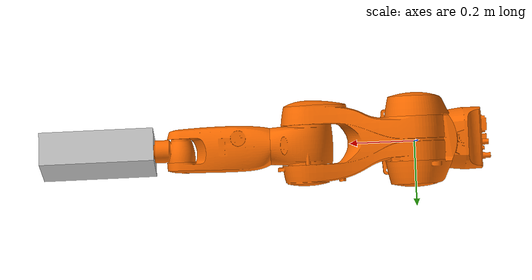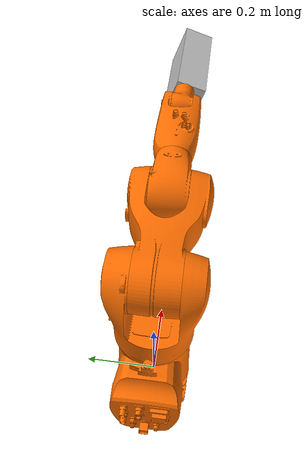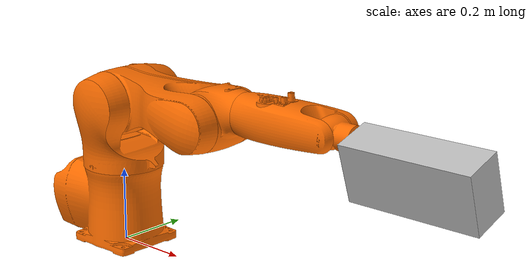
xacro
<?xml version="1.0"?>

<robot name="kuka_kr6" xmlns:xacro="http://ros.org/wiki/xacro">
  <xacro:macro name="kuka_kr6" params="prefix">
    <!-- link list -->
    <link name="${prefix}base_link">
     <visual>
      <origin xyz="0 0 0" rpy="0 0 0"/>
      <geometry>
        <mesh filename="package://kuka_kr6/robots/base_link.STL" />
      </geometry>
      <material name="orange">
        <color rgba="1 0.43 0 1" />
      </material>
     </visual>
     <collision>
      <geometry>
        <mesh filename="package://kuka_kr6/robots/base_link_collision_reduced.STL" />
       </geometry>
       <material name="yellow">
         <color rgba="0 1 1 1"/>
       </material>
     </collision>
    </link>

    <link name="${prefix}link1">
      <visual>
        <origin xyz="0.025 0 0" rpy="0 0 0" />
        <geometry>
          <mesh filename="package://kuka_kr6/robots/link1.STL" />
        </geometry>
        <material name="orange"/>
      </visual>
      <collision>
        <geometry>
          <mesh filename="package://kuka_kr6/robots/link1_collision_reduced.STL" />
        </geometry>
        <material name="yellow"/>
      </collision>
    </link>

    <link name="${prefix}link2">
      <visual>
        <origin xyz="0 0 0" rpy="0 0 0"/>
        <geometry>
          <mesh filename="package://kuka_kr6/robots/link2.STL" />
        </geometry>
        <material name="orange"/>
      </visual>
      <collision>
        <geometry>
          <mesh filename="package://kuka_kr6/robots/link2_collision_reduced.STL" />
        </geometry>
        <material name="yellow"/>
      </collision>
    </link>

    <link name="${prefix}link3">
      <visual>
        <origin xyz="0 -0.035 0" rpy="0 0 0" />
        <geometry>
          <mesh filename="package://kuka_kr6/robots/link3.STL" />
        </geometry>
        <material name="orange"/>
      </visual>
      <collision>
        <geometry>
          <mesh filename="package://kuka_kr6/robots/link3_collision_reduced.STL" />
        </geometry>
        <material name="yellow"/>
      </collision>
    </link>

    <link name="${prefix}link4">
      <visual>
        <origin xyz="0 0 0" rpy="0 0 0"/>
        <geometry>
          <mesh filename="package://kuka_kr6/robots/link4.STL" />
        </geometry>
        <material name="orange"/>
      </visual>
      <collision>
        <geometry>
          <mesh filename="package://kuka_kr6/robots/link4_collision_reduced.STL" />
        </geometry>
        <material name="yellow"/>
      </collision>
    </link>

    <link name="${prefix}link5">
      <visual>
        <origin xyz="0 0 0" rpy="0 -1.57079633 0" />
        <geometry>
          <mesh filename="package://kuka_kr6/robots/link5.STL" />
        </geometry>
        <material name="orange"/>
      </visual>
      <collision>
        <geometry>
          <mesh filename="package://kuka_kr6/robots/link5_collision_reduced.STL" />
        </geometry>
        <material name="yellow"/>
      </collision>
    </link>

    <link name="${prefix}link6">
      <visual>
        <origin xyz="0 0 0" rpy="0 0 0"/>
        <geometry>
          <mesh filename="package://kuka_kr6/robots/link6.STL" />
        </geometry>
        <material name="orange"/>
      </visual>
      <collision>
        <geometry>
          <mesh filename="package://kuka_kr6/robots/link6_collision_reduced.STL" />
        </geometry>
        <material name="yellow"/>
      </collision>
    </link>

    <link name="${prefix}flange">
      <visual>
        <origin rpy="0 0 0.3275285" xyz="0.05 0 0.1661755"/>
        <geometry>
          <box size="0.15 0.1 0.332351"/>
        </geometry>
        <material name="silver">
          <color rgba="0.75 0.75 0.75 1"/>
        </material>
      </visual>
      <collision>
        <origin rpy="0 0 0.3275285" xyz="0.05 0 0.1661755"/>
        <geometry>
          <box size="0.15 0.1 0.332351"/>
        </geometry>
        <material name="silver"/>
      </collision>
    </link>

    <link name="${prefix}tip"/>

    <!-- end of link list -->

    <!-- joint list -->
    <joint name="${prefix}joint1" type="revolute">
      <origin xyz="0 0 0.4" rpy="3.14159265 0 0" />
      <parent link="${prefix}base_link" />
      <child link="${prefix}link1" />
      <axis xyz="0 0 1" />
      <limit lower="-2.967059728" upper="2.967059728" effort="1" velocity="1"/>
      </joint>

    <joint name="${prefix}joint2" type="revolute">
      <origin xyz="0.025 0 0" rpy="1.57079633 0 0" />
      <parent link="${prefix}link1" />
      <child link="${prefix}link2" />
      <axis xyz="0 0 1" />
      <limit lower="-3.316125579" upper="0.785398163" effort="1" velocity="1"/>
    </joint>

    <joint name="${prefix}joint3" type="revolute">
      <origin xyz="0.315 0 0" rpy="0 0 0" />
      <parent link="${prefix}link2" />
      <child link="${prefix}link3" />
      <axis xyz="0 0 1" />
      <limit lower="-2.094395102" upper="2.722713633" effort="1" velocity="1"/>
    </joint>

    <joint name="${prefix}joint4" type="revolute">
      <origin xyz="0.365 -0.035 0" rpy="0 -1.57079633 0" />
      <parent link="${prefix}link3" />
      <child link="${prefix}link4" />
      <axis xyz="0 0 1" />
      <limit lower="-3.228859116" upper="3.228859116" effort="1" velocity="1"/>
    </joint>

    <joint name="${prefix}joint5" type="revolute">
      <origin xyz="0 0 0" rpy="0 1.57079633 0" />
      <parent link="${prefix}link4" />
      <child link="${prefix}link5" />
      <axis xyz="0 0 1" />
      <limit lower="-2.094395102" upper="2.094395102" effort="1" velocity="1"/>
    </joint>

    <joint name="${prefix}joint6" type="revolute">
      <origin xyz="0 0 0" rpy="0 -1.57079633 0" />
      <parent link="${prefix}link5" />
      <child link="${prefix}link6" />
      <axis xyz="0 0 1" />
      <limit lower="-6.108652382" upper="6.108652382" effort="1" velocity="1"/>
    </joint>

    <joint name="${prefix}flange_joint" type="fixed">
      <origin xyz="0 0 -0.08" rpy="3.14159265 0 1.57079633" />
      <parent link="${prefix}link6" />
      <child link="${prefix}flange" />
    </joint>

    <joint name="${prefix}tip_joint" type="fixed">
      <origin rpy="1.0687349 -1.52199692 -2.44443834" xyz="0.0702 0.023006 0.332351"/>
      <parent link="${prefix}flange"/>
      <child link="${prefix}tip"/>
    </joint>
    <!-- end of joint list -->

    <!-- ROS base_link to World Coordinates transform -->
    <link name="${prefix}world"/>
    <joint name="${prefix}base_link-world" type="fixed">
      <origin xyz="0 0 0" rpy="0 0 0"/>
      <parent link="${prefix}base_link"/>
      <child link="${prefix}world"/>
    </joint>
  </xacro:macro>

  <xacro:kuka_kr6 prefix=""/>

</robot>
